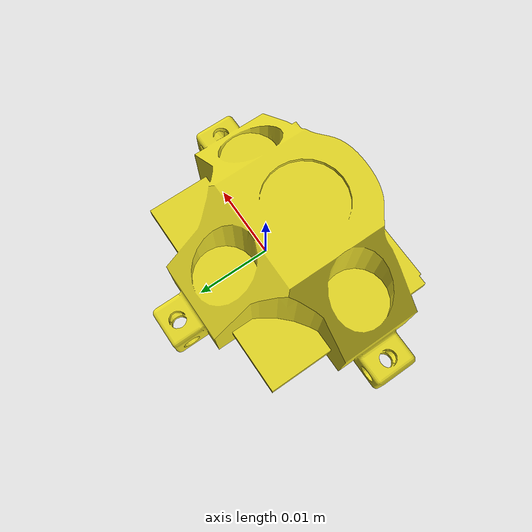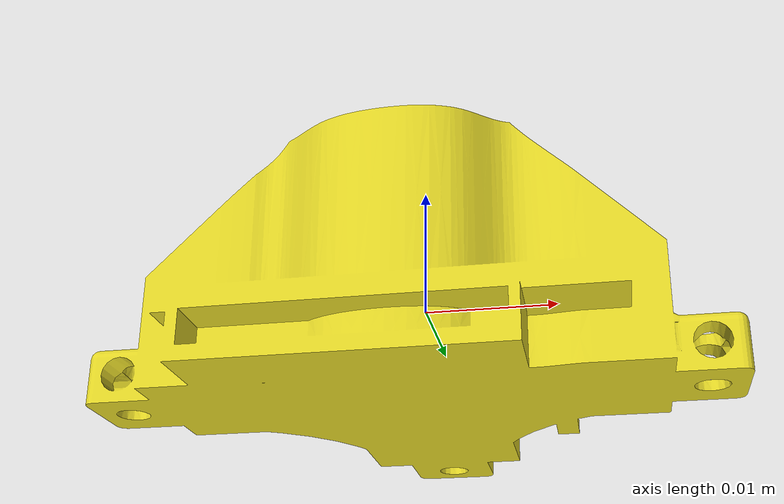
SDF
<?xml version="1.0" ?>
<sdf version="1.4">
  <model name="terarangerone">
    <link name="link">
      <inertial>
        <pose>0 0 0 0 0 0</pose>
        <mass>0.008</mass>
        <inertia>
          <ixx>2.1733e-6</ixx>
          <ixy>0</ixy>
          <ixz>0</ixz>
          <iyy>2.1733e-6</iyy>
          <iyz>0</iyz>
          <izz>1.8e-7</izz>
        </inertia>
      </inertial>
      <visual name="visual">
        <geometry>
          <mesh>
            <uri>model://terarangerone/meshes/TR1_spider.dae</uri>
          </mesh>
        </geometry>
        <material>
          <script>
            <name>Gazebo/Yellow</name>
            <uri>file://media/materials/scripts/gazebo.material</uri>
          </script>
        </material>
      </visual>
      <sensor name="laser" type="ray">
        <pose>0 0 0.02 0 -1.570896 0</pose>
        <ray>
          <range>
            <min>0.02</min>
            <max>14</max>
            <resolution>0.01</resolution>
          </range>
        </ray>

        <always_on>1</always_on>

        <visualize>true</visualize>

        <plugin name="gazebo_ros_teraranger_controller" filename="libgazebo_ros_range.so">
          <topicName>/terarangerone</topicName>
          <frameName>base_range</frameName>
          <radiation>infrared</radiation>
          <updateRate>0</updateRate>
          <gaussianNoise>0.01</gaussianNoise>
        </plugin>
      </sensor>
    </link>
  </model>
</sdf>
